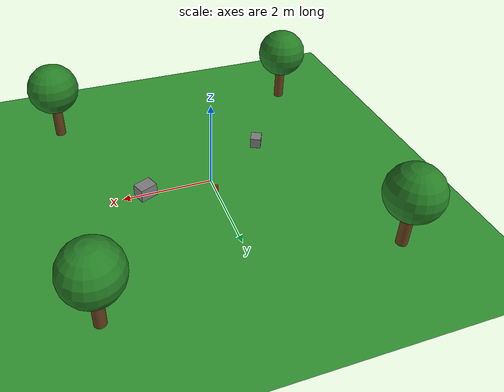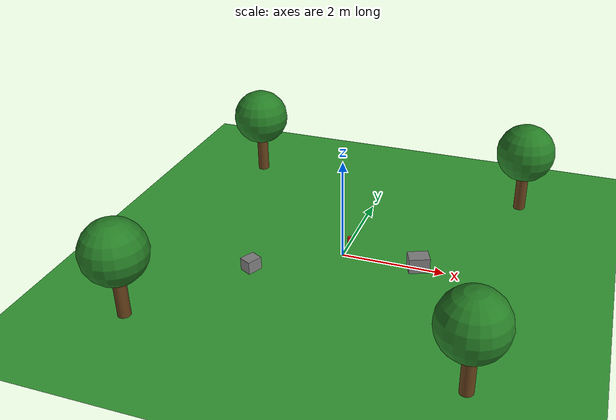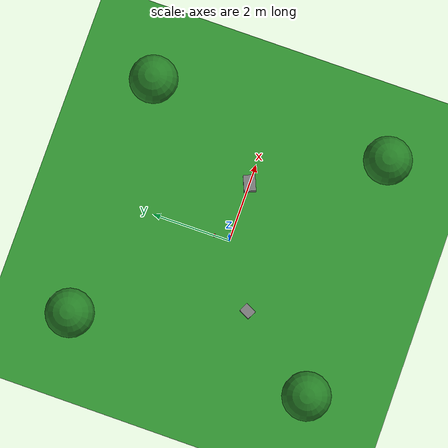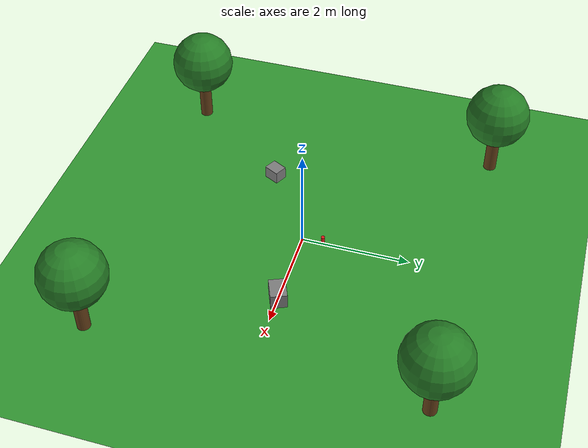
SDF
<?xml version="1.0" ?>
<sdf version="1.6">
  <world name="outdoor_small_world">

    <!-- Cheap rendering settings so this stays light on low-end GPUs -->
    <scene>
      <ambient>0.7 0.7 0.7 1</ambient>
      <background>0.6 0.8 1.0 1</background>
      <shadows>false</shadows>
      <grid>false</grid>
    </scene>

    <physics type="ode">
      <max_step_size>0.001</max_step_size>
      <real_time_factor>1</real_time_factor>
      <real_time_update_rate>1000</real_time_update_rate>
    </physics>

    <plugin name="gazebo_ros_state" filename="libgazebo_ros_state.so">
      <ros>
        <namespace>/gazebo</namespace>
      </ros>
      <update_rate>50.0</update_rate>
    </plugin>

    <include>
      <uri>model://sun</uri>
    </include>

    <!-- Grass-colored ground plane, 10x10m -->
    <model name="ground">
      <static>true</static>
      <link name="link">
        <collision name="collision">
          <geometry>
            <plane>
              <normal>0 0 1</normal>
              <size>10 10</size>
            </plane>
          </geometry>
          <surface>
            <friction>
              <ode>
                <mu>100</mu>
                <mu2>50</mu2>
              </ode>
            </friction>
          </surface>
        </collision>
        <visual name="visual">
          <geometry>
            <plane>
              <normal>0 0 1</normal>
              <size>10 10</size>
            </plane>
          </geometry>
          <material>
            <ambient>0.15 0.5 0.15 1</ambient>
            <diffuse>0.2 0.6 0.2 1</diffuse>
            <specular>0.05 0.05 0.05 1</specular>
          </material>
        </visual>
      </link>
    </model>

    <!-- A few simple trees: cylinder trunk + sphere canopy, cheap primitives -->
    <model name="tree_1">
      <static>true</static>
      <pose>3 3 0 0 0 0</pose>
      <link name="link">
        <collision name="trunk_collision">
          <pose>0 0 0.5 0 0 0</pose>
          <geometry><cylinder><radius>0.12</radius><length>1.0</length></cylinder></geometry>
        </collision>
        <visual name="trunk_visual">
          <pose>0 0 0.5 0 0 0</pose>
          <geometry><cylinder><radius>0.12</radius><length>1.0</length></cylinder></geometry>
          <material><ambient>0.35 0.2 0.05 1</ambient><diffuse>0.4 0.25 0.1 1</diffuse></material>
        </visual>
        <visual name="canopy_visual">
          <pose>0 0 1.3 0 0 0</pose>
          <geometry><sphere><radius>0.6</radius></sphere></geometry>
          <material><ambient>0.1 0.4 0.1 1</ambient><diffuse>0.15 0.5 0.15 1</diffuse></material>
        </visual>
      </link>
    </model>

    <model name="tree_2">
      <static>true</static>
      <pose>-3 3 0 0 0 0</pose>
      <link name="link">
        <collision name="trunk_collision">
          <pose>0 0 0.5 0 0 0</pose>
          <geometry><cylinder><radius>0.12</radius><length>1.0</length></cylinder></geometry>
        </collision>
        <visual name="trunk_visual">
          <pose>0 0 0.5 0 0 0</pose>
          <geometry><cylinder><radius>0.12</radius><length>1.0</length></cylinder></geometry>
          <material><ambient>0.35 0.2 0.05 1</ambient><diffuse>0.4 0.25 0.1 1</diffuse></material>
        </visual>
        <visual name="canopy_visual">
          <pose>0 0 1.3 0 0 0</pose>
          <geometry><sphere><radius>0.6</radius></sphere></geometry>
          <material><ambient>0.1 0.4 0.1 1</ambient><diffuse>0.15 0.5 0.15 1</diffuse></material>
        </visual>
      </link>
    </model>

    <model name="tree_3">
      <static>true</static>
      <pose>-3 -3 0 0 0 0</pose>
      <link name="link">
        <collision name="trunk_collision">
          <pose>0 0 0.5 0 0 0</pose>
          <geometry><cylinder><radius>0.12</radius><length>1.0</length></cylinder></geometry>
        </collision>
        <visual name="trunk_visual">
          <pose>0 0 0.5 0 0 0</pose>
          <geometry><cylinder><radius>0.12</radius><length>1.0</length></cylinder></geometry>
          <material><ambient>0.35 0.2 0.05 1</ambient><diffuse>0.4 0.25 0.1 1</diffuse></material>
        </visual>
        <visual name="canopy_visual">
          <pose>0 0 1.3 0 0 0</pose>
          <geometry><sphere><radius>0.6</radius></sphere></geometry>
          <material><ambient>0.1 0.4 0.1 1</ambient><diffuse>0.15 0.5 0.15 1</diffuse></material>
        </visual>
      </link>
    </model>

    <model name="tree_4">
      <static>true</static>
      <pose>3 -3 0 0 0 0</pose>
      <link name="link">
        <collision name="trunk_collision">
          <pose>0 0 0.5 0 0 0</pose>
          <geometry><cylinder><radius>0.12</radius><length>1.0</length></cylinder></geometry>
        </collision>
        <visual name="trunk_visual">
          <pose>0 0 0.5 0 0 0</pose>
          <geometry><cylinder><radius>0.12</radius><length>1.0</length></cylinder></geometry>
          <material><ambient>0.35 0.2 0.05 1</ambient><diffuse>0.4 0.25 0.1 1</diffuse></material>
        </visual>
        <visual name="canopy_visual">
          <pose>0 0 1.3 0 0 0</pose>
          <geometry><sphere><radius>0.6</radius></sphere></geometry>
          <material><ambient>0.1 0.4 0.1 1</ambient><diffuse>0.15 0.5 0.15 1</diffuse></material>
        </visual>
      </link>
    </model>

    <!-- A couple of simple rock obstacles (plain boxes, cheap) -->
    <model name="rock_1">
      <static>true</static>
      <pose>1.5 0 0.15 0 0 0.4</pose>
      <link name="link">
        <collision name="collision">
          <geometry><box><size>0.4 0.3 0.3</size></box></geometry>
        </collision>
        <visual name="visual">
          <geometry><box><size>0.4 0.3 0.3</size></box></geometry>
          <material><ambient>0.4 0.4 0.4 1</ambient><diffuse>0.5 0.5 0.5 1</diffuse></material>
        </visual>
      </link>
    </model>

    <model name="rock_2">
      <static>true</static>
      <pose>-1.5 -1 0.12 0 0 1.1</pose>
      <link name="link">
        <collision name="collision">
          <geometry><box><size>0.3 0.25 0.25</size></box></geometry>
        </collision>
        <visual name="visual">
          <geometry><box><size>0.3 0.25 0.25</size></box></geometry>
          <material><ambient>0.4 0.4 0.4 1</ambient><diffuse>0.5 0.5 0.5 1</diffuse></material>
        </visual>
      </link>
    </model>

    <model name="pickup_object">
      <pose>0.0 0.39 0.09 0 0 0</pose>
      <link name="link">
        <inertial>
          <mass>0.05</mass>
          <inertia>
            <ixx>0.0001</ixx><iyy>0.0001</iyy><izz>0.00003</izz>
            <ixy>0</ixy><ixz>0</ixz><iyz>0</iyz>
          </inertia>
        </inertial>
        <collision name="collision">
          <geometry><cylinder><radius>0.035</radius><length>0.18</length></cylinder></geometry>
          <surface>
            <friction>
              <ode>
                <mu>1.5</mu>
                <mu2>1.5</mu2>
              </ode>
            </friction>
          </surface>
        </collision>
        <visual name="visual">
          <geometry><cylinder><radius>0.035</radius><length>0.18</length></cylinder></geometry>
          <material><ambient>0.8 0.05 0.05 1</ambient><diffuse>0.9 0.1 0.1 1</diffuse></material>
        </visual>
      </link>
    </model>

  </world>
</sdf>
